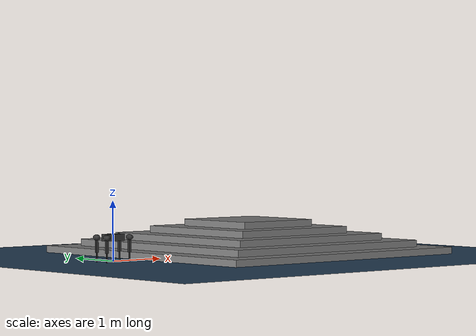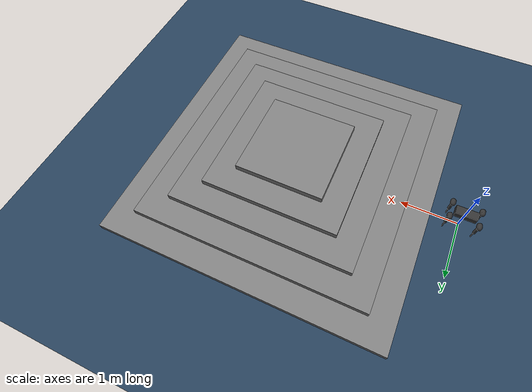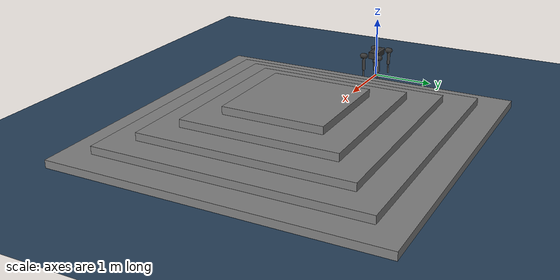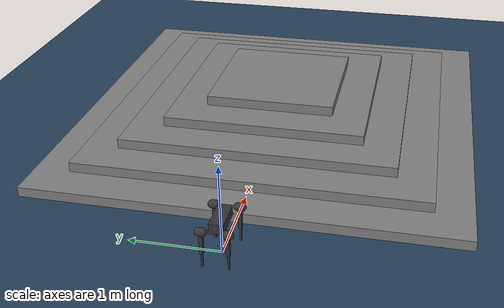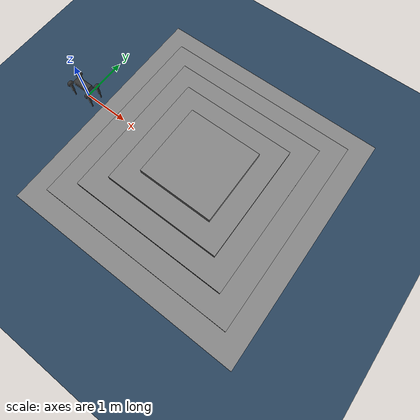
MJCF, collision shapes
<mujoco model="aliengo scene">
  <include file="aliengo.xml" />

  <statistic center="0 0 0.1" extent="0.8" />

  <visual>
    <headlight diffuse="0.6 0.6 0.6" ambient="0.3 0.3 0.3" specular="0 0 0" />
    <rgba haze="0.15 0.25 0.35 1" />
    <global azimuth="-130" elevation="-20" />
  </visual>

  <asset>
    <texture type="skybox" builtin="gradient" rgb1="0.3 0.5 0.7" rgb2="0 0 0" width="512" height="3072" />
    <texture type="2d" name="groundplane" builtin="checker" mark="edge" rgb1="0.2 0.3 0.4" rgb2="0.1 0.2 0.3" markrgb="0.8 0.8 0.8" width="300" height="300" />
    <material name="groundplane" texture="groundplane" texuniform="true" texrepeat="5 5" reflectance="0.2" />
  </asset>

  <worldbody>
    <light pos="0 0 1.5" dir="0 0 -1" directional="true" />
    <geom name="floor" size="0 0 0.05" type="plane" material="groundplane" />
  <geom pos="3.0 0.0 0.06841694527491272" type="box" size="2.5 2.5 0.059208472637456364" quat="1.0 0.0 0.0 0.0" /><geom pos="3.0 0.0 0.18683389054982547" type="box" size="2.071202658406895 2.071202658406895 0.059208472637456364" quat="1.0 0.0 0.0 0.0" /><geom pos="3.0 0.0 0.3052508358247382" type="box" size="1.6424053168137902 1.6424053168137902 0.059208472637456364" quat="1.0 0.0 0.0 0.0" /><geom pos="3.0 0.0 0.423667781099651" type="box" size="1.2136079752206852 1.2136079752206852 0.059208472637456364" quat="1.0 0.0 0.0 0.0" /><geom pos="3.0 0.0 0.5420847263745637" type="box" size="0.7848106336275804 0.7848106336275804 0.059208472637456364" quat="1.0 0.0 0.0 0.0" /></worldbody>
</mujoco>

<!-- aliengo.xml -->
<mujoco model="aliengo_description">
    <compiler angle="radian" autolimits="true"/>

    <default>
        <default class="visual">
            <geom type="mesh" contype="0" conaffinity="0" group="2"/>
        </default>
        <default class="collision">
            <geom group="3" rgba="0.2 0.2 0.2 0.5"/>
        </default>

        <default class="hip">
            <motor ctrlrange="-35.278 35.278"/>
        </default>
        <default class="thigh">
            <motor ctrlrange="-35.278 35.278"/>
        </default>
        <default class="calf">
            <motor ctrlrange="-44.4 44.4"/>
        </default>

    </default>

    <asset>
        <mesh name="base" file="assets/base.stl"/>
        <mesh name="hip" file="assets/hip.stl"/>
        <mesh name="thigh_mirror" file="assets/thigh_mirror.stl"/>
        <mesh name="calf" file="assets/calf.stl"/>
        <mesh name="thigh" file="assets/thigh.stl"/>
    </asset>

    <worldbody>

        <body name="base" pos="0 0 0.4">
            <inertial pos="0.00846406 0.00404455 -0.000762916" quat="-3.12625e-05 0.708321 0.00247254 0.705886"
                      mass="13.042" diaginertia="0.174706 0.161175 0.033357"/>
            <freejoint/>

            <!-- base visual mesh and collision -->
            <geom type="mesh" class="visual" rgba="0.2 0.2 0.2 1" mesh="base"/>
            <geom type="box" class="collision" size="0.18 0.075 0.056"/>

            <!-- modify this to add payload -->

            <!-- imu and camera -->
            <site name="imu" pos="0 0 0"/>
            <camera name="robotcam" pos="0.31 -0.005 0.00292751" quat="0.4 0.4 -0.4 -0.4"/>

            <!-- FL leg -->
            <body name="FL_hip" pos="0.2399 0.051 0">
                <inertial pos="-0.022191 0.015144 -1.5e-05" quat="-0.0135493 0.706835 0.0117635 0.707151" mass="1.993"
                          diaginertia="0.00558695 0.00491009 0.00290132"/>
                <joint name="FL_hip_joint" pos="0 0 0" axis="1 0 0" limited="true" range="-1.22173 1.22173" armature="0.0062" frictionloss="0.4168" damping="0.1744"/>

                <!-- FL_hip visual mesh and collision -->
                <geom type="mesh" class="visual" rgba="0.2 0.2 0.2 1" mesh="hip"/>
                <geom type="capsule" class="collision" size="0.046 0.0209" pos="0 0.083 0"
                      quat="0.707107 0.707107 0 0"/>

                <body name="FL_thigh" pos="0 0.083 0">
                    <inertial pos="-0.005607 -0.003877 -0.048199" quat="0.717987 -0.031246 -0.0335669 0.694544"
                              mass="0.639" diaginertia="0.0058474 0.00571186 0.000324584"/>
                    <joint name="FL_thigh_joint" pos="0 0 0" axis="0 1 0" armature="0.0172" frictionloss="0.3451" damping="0.1396"/>

                    <!-- FL_thigh visual mesh and collision -->
                    <geom type="mesh" class="visual" rgba="0.2 0.2 0.2 1" mesh="thigh"/>
                    <geom type="box" class="collision" size="0.125 0.0187 0.0215" pos="0 0 -0.125"
                          quat="0.707107 0 0.707107 0"/>

                    <body name="FL_calf" pos="0 0 -0.25">
                        <inertial pos="0.00215606 4.88427e-05 -0.166671" quat="0.707462 0.00517582 0.00535172 0.706712"
                                  mass="0.267" diaginertia="0.00690975 0.00689712 5.4885e-05"/>
                        <joint name="FL_calf_joint" pos="0 0 0" axis="0 1 0" limited="true" range="-2.77507 -0.645772" armature="0.0269" frictionloss="0.4909" damping="0.1588"/>

                        <!-- FL_calf visual mesh and collision -->
                        <geom type="mesh" class="visual" rgba="0 0 0 1" mesh="calf"/>
                        <geom type="box" class="collision" size="0.125 0.0104 0.008" pos="0 0 -0.125"
                              quat="0.707107 0 0.707107 0"/>

                        <!-- FL_foot only collision -->
                        <!--geom name="FL" class="collision" size="0.0265" pos="0 0 -0.25"/-->

                        <body name="FL_foot" pos="0 0 -0.25">
                            <!-- FL_foot only collision -->
                            <geom name="FL" class="collision" size="0.0265"/>
                        </body>

                    </body>
                </body>
            </body>

            <!-- FR leg -->
            <body name="FR_hip" pos="0.2399 -0.051 0">
                <inertial pos="-0.022191 -0.015144 -1.5e-05" quat="0.0135493 0.706835 -0.0117635 0.707151" mass="1.993"
                          diaginertia="0.00558695 0.00491009 0.00290132"/>
                <joint name="FR_hip_joint" pos="0 0 0" axis="1 0 0" limited="true" range="-1.22173 1.22173" armature="0.0096" frictionloss="0.4756" damping="0.1"/>

                <!-- FR_hip visual mesh and collision -->
                <geom type="mesh" mesh="hip" class="visual" quat="0 1 0 0" rgba="0.2 0.2 0.2 1"/>
                <geom type="capsule" class="collision" size="0.046 0.0209" pos="0 -0.083 0"
                      quat="0.707107 0.707107 0 0"/>

                <body name="FR_thigh" pos="0 -0.083 0">
                    <inertial pos="-0.005607 0.003877 -0.048199" quat="0.694544 -0.0335669 -0.031246 0.717987"
                              mass="0.639" diaginertia="0.0058474 0.00571186 0.000324584"/>
                    <joint name="FR_thigh_joint" pos="0 0 0" axis="0 1 0" armature="0.0126" frictionloss="0.2558" damping="0.2542"/>

                    <!-- FR_thigh visual mesh and collision -->
                    <geom type="mesh" mesh="thigh_mirror" class="visual" rgba="0.2 0.2 0.2 1"/>
                    <geom type="box" class="collision" size="0.125 0.0187 0.0215" pos="0 0 -0.125"
                          quat="0.707107 0 0.707107 0"/>

                    <body name="FR_calf" pos="0 0 -0.25">
                        <inertial pos="0.00215606 4.88427e-05 -0.166671" quat="0.707462 0.00517582 0.00535172 0.706712"
                                  mass="0.267" diaginertia="0.00690975 0.00689712 5.4885e-05"/>
                        <joint name="FR_calf_joint" pos="0 0 0" axis="0 1 0" limited="true" range="-2.77507 -0.645772" armature="0.0170" frictionloss="0.1965" damping="0.3150"/>

                        <!-- FR_calf visual mesh and collision -->
                        <geom type="mesh" mesh="calf" class="visual" rgba="0 0 0 1"/>
                        <geom type="box" class="collision" size="0.125 0.0104 0.008" pos="0 0 -0.125"
                              quat="0.707107 0 0.707107 0"/>

                        <!-- FR_foot only collision -->
                        <!--geom name="FR" class="collision" size="0.0265" pos="0 0 -0.25"/-->

                        <body name="FR_foot" pos="0 0 -0.25">
                            <!-- FR_foot only collision -->
                            <geom name="FR" class="collision" size="0.0265"/>
                        </body>

                    </body>
                </body>
            </body>

            <!-- RL leg -->
            <body name="RL_hip" pos="-0.2399 0.051 0">
                <inertial pos="0.022191 0.015144 -1.5e-05" quat="0.0117635 0.707151 -0.0135493 0.706835" mass="1.993"
                          diaginertia="0.00558695 0.00491009 0.00290132"/>
                <joint name="RL_hip_joint" pos="0 0 0" axis="1 0 0" limited="true" range="-1.22173 1.22173" armature="0.0097" frictionloss="0.3773" damping="0.1832"/>

                <!-- RL_hip visual mesh and collision -->
                <geom type="mesh" class="visual" quat="0 0 1 0" rgba="0.2 0.2 0.2 1" mesh="hip"/>
                <geom type="capsule" class="collision" size="0.046 0.0209" pos="0 0.083 0"
                      quat="0.707107 0.707107 0 0"/>

                <body name="RL_thigh" pos="0 0.083 0">
                    <inertial pos="-0.005607 -0.003877 -0.048199" quat="0.717987 -0.031246 -0.0335669 0.694544"
                              mass="0.639" diaginertia="0.0058474 0.00571186 0.000324584"/>
                    <joint name="RL_thigh_joint" pos="0 0 0" axis="0 1 0" armature="0.0160" frictionloss="0.2892" damping="0.1884"/>

                    <!-- RL_thigh visual mesh and collision -->
                    <geom type="mesh" class="visual" rgba="0.2 0.2 0.2 1" mesh="thigh"/>
                    <geom type="box" class="collision" size="0.125 0.0187 0.0215" pos="0 0 -0.125"
                          quat="0.707107 0 0.707107 0"/>

                    <body name="RL_calf" pos="0 0 -0.25">
                        <inertial pos="0.00215606 4.88427e-05 -0.166671" quat="0.707462 0.00517582 0.00535172 0.706712"
                                  mass="0.267" diaginertia="0.00690975 0.00689712 5.4885e-05"/>
                        <joint name="RL_calf_joint" pos="0 0 0" axis="0 1 0" limited="true" range="-2.77507 -0.645772" armature="0.0233" frictionloss="0.3549" damping="0.2531"/>

                        <!-- RL_calf visual mesh and collision -->
                        <geom type="mesh" class="visual" rgba="0 0 0 1" mesh="calf"/>
                        <geom type="box" class="collision" size="0.125 0.0104 0.008" pos="0 0 -0.125"
                              quat="0.707107 0 0.707107 0"/>

                        <!-- RL_foot only collision -->
                        <!--geom name="RL" class="collision" size="0.0265" pos="0 0 -0.25"/-->

                        <body name="RL_foot" pos="0 0 -0.25">
                            <!-- RL_foot only collision -->
                            <geom name="RL" class="collision" size="0.0265"/>
                        </body>

                    </body>
                </body>
            </body>

            <!-- RR leg -->
            <body name="RR_hip" pos="-0.2399 -0.051 0">
                <inertial pos="0.022191 -0.015144 -1.5e-05" quat="-0.0117635 0.707151 0.0135493 0.706835" mass="1.993"
                          diaginertia="0.00558695 0.00491009 0.00290132"/>
                <joint name="RR_hip_joint" pos="0 0 0" axis="1 0 0" limited="true" range="-1.22173 1.22173" armature="0.0119" frictionloss="0.6511" damping="0.2535"/>

                <!-- RR_hip visual mesh and collision -->
                <geom type="mesh" class="visual" quat="0 0 0 -1" rgba="0.2 0.2 0.2 1" mesh="hip"/>
                <geom type="capsule" class="collision" size="0.046 0.0209" pos="0 -0.083 0"
                      quat="0.707107 0.707107 0 0"/>

                <body name="RR_thigh" pos="0 -0.083 0">
                    <inertial pos="-0.005607 0.003877 -0.048199" quat="0.694544 -0.0335669 -0.031246 0.717987"
                              mass="0.639" diaginertia="0.0058474 0.00571186 0.000324584"/>
                    <joint name="RR_thigh_joint" pos="0 0 0" axis="0 1 0" armature="0.0150" frictionloss="0.2998" damping="0.2233"/>

                    <!-- RR_thigh visual mesh and collision -->
                    <geom type="mesh" class="visual" rgba="0.2 0.2 0.2 1" mesh="thigh_mirror"/>
                    <geom type="box" class="collision" size="0.125 0.0187 0.0215" pos="0 0 -0.125"
                          quat="0.707107 0 0.707107 0"/>

                    <body name="RR_calf" pos="0 0 -0.25">
                        <inertial pos="0.00215606 4.88427e-05 -0.166671" quat="0.707462 0.00517582 0.00535172 0.706712"
                                  mass="0.267" diaginertia="0.00690975 0.00689712 5.4885e-05"/>
                        <joint name="RR_calf_joint" pos="0 0 0" axis="0 1 0" limited="true" range="-2.77507 -0.645772" armature="0.0249" frictionloss="0.4363" damping="0.3365"/>

                        <!-- RR_calf visual mesh and collision -->
                        <geom type="mesh" class="visual" rgba="0 0 0 1" mesh="calf"/>
                        <geom type="box" class="collision" size="0.125 0.0104 0.008" pos="0 0 -0.125"
                              quat="0.707107 0 0.707107 0"/>

                        <!-- RR_foot only collision -->
                        <!--geom name="RR" class="collision" size="0.0265" pos="0 0 -0.25"/-->

                        <body name="RR_foot" pos="0 0 -0.25">
                            <!-- RR_foot only collision -->
                            <geom name="RR" class="collision" size="0.0265"/>
                        </body>

                    </body>
                </body>
            </body>
        </body>
    </worldbody>

    <actuator>
        <motor name="FL_hip"   class="hip"    gear="1" joint="FL_hip_joint"/>
        <motor name="FL_thigh" class="thigh"  gear="1" joint="FL_thigh_joint"/>
        <motor name="FL_calf"  class="calf"   gear="1" joint="FL_calf_joint"/>
        <motor name="FR_hip"   class="hip"    gear="1" joint="FR_hip_joint"/>
        <motor name="FR_thigh" class="thigh"  gear="1" joint="FR_thigh_joint"/>
        <motor name="FR_calf"  class="calf"   gear="1" joint="FR_calf_joint"/>
        <motor name="RL_hip"   class="hip"    gear="1" joint="RL_hip_joint"/>
        <motor name="RL_thigh" class="thigh"  gear="1" joint="RL_thigh_joint"/>
        <motor name="RL_calf"  class="calf"   gear="1" joint="RL_calf_joint"/>
        <motor name="RR_hip"   class="hip"    gear="1" joint="RR_hip_joint"/>
        <motor name="RR_thigh" class="thigh"  gear="1" joint="RR_thigh_joint"/>
        <motor name="RR_calf"  class="calf"   gear="1" joint="RR_calf_joint" />
    </actuator>

    <sensor>
        <accelerometer name="imu_acc" site="imu"/>
        <gyro name="imu_gyro" site="imu"/>
        <framepos name="imu_pos" objtype="site" objname="imu"/>
        <framequat name="imu_quat" objtype="site" objname="imu"/>

        <jointpos name="FL_hip_joint_pos" joint="FL_hip_joint"/>
        <jointpos name="FL_thigh_joint_pos" joint="FL_thigh_joint"/>
        <jointpos name="FL_calf_joint_pos" joint="FL_calf_joint"/>
        <jointpos name="FR_hip_joint_pos" joint="FR_hip_joint"/>
        <jointpos name="FR_thigh_joint_pos" joint="FR_thigh_joint"/>
        <jointpos name="FR_calf_joint_pos" joint="FR_calf_joint"/>
        <jointpos name="RL_hip_joint_pos" joint="RL_hip_joint"/>
        <jointpos name="RL_thigh_joint_pos" joint="RL_thigh_joint"/>
        <jointpos name="RL_calf_joint_pos" joint="RL_calf_joint"/>
        <jointpos name="RR_hip_joint_pos" joint="RR_hip_joint"/>
        <jointpos name="RR_thigh_joint_pos" joint="RR_thigh_joint"/>
        <jointpos name="RR_calf_joint_pos" joint="RR_calf_joint"/>
    </sensor>

    <keyframe>
        <key name="home" qpos="0 0 0.35 1 0 0 0 0 0.9 -1.8 0 0.9 -1.8 0 0.9 -1.8 0 0.9 -1.8"/>
        <key name="down" qpos="0 0 0.05 1 0 0 0 0.0 1.21 -2.794 0.0 1.21 -2.794 0.0 1.21 -2.794 0.0 1.21 -2.794"/>
    </keyframe>
</mujoco>
